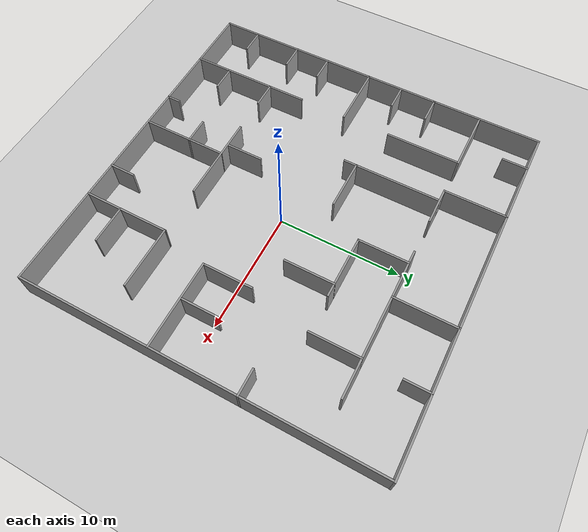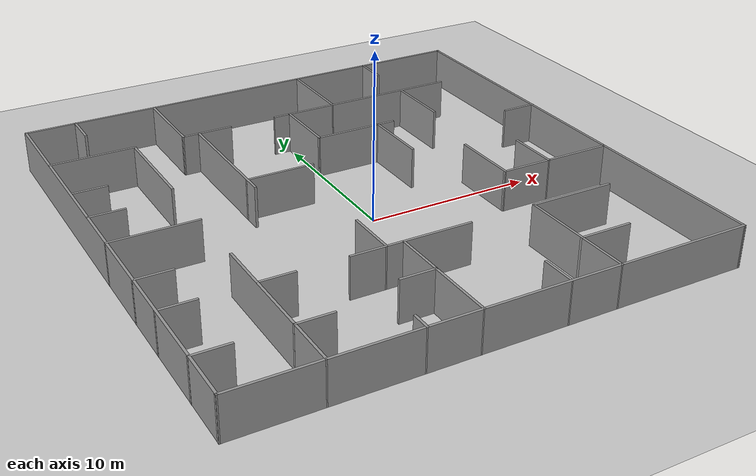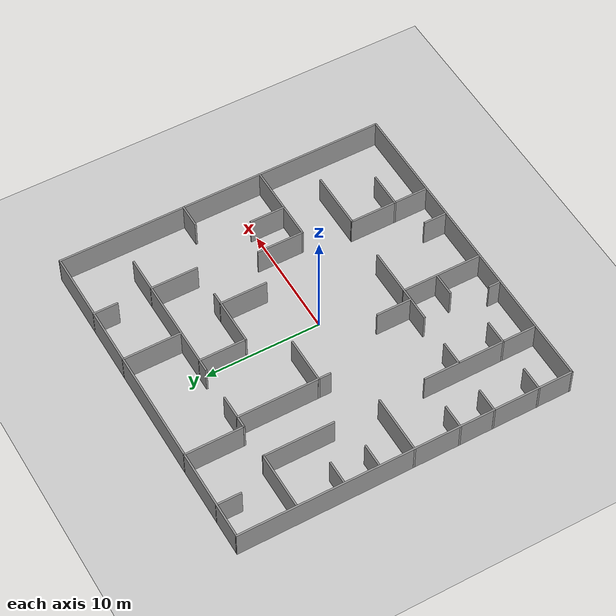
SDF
<sdf version="1.6">
 <world name="default">
  <light name="sun" type="directional">
   <pose>0 0 10 0 -0 0</pose>
   <diffuse>0.8 0.8 0.8 1</diffuse>
   <specular>0.1 0.1 0.1 1</specular>
   <attenuation>
    <range>1000</range>
    <constant>0.9</constant>
    <linear>0.01</linear>
    <quadratic>0.001</quadratic>
   </attenuation>
   <direction>-0.5 0.5 -1</direction>
  </light>
  <model name="ground_plane">
   <static>1</static>
   <link name="link">
    <collision name="collision">
     <geometry><plane><normal>0 0 1</normal><size>100 100</size></plane></geometry>
     <surface><friction><ode><mu>100</mu><mu2>50</mu2></ode></friction></surface>
    </collision>
    <visual name="visual">
     <cast_shadows>0</cast_shadows>
     <geometry><plane><normal>0 0 1</normal><size>100 100</size></plane></geometry>
     <material>
      <script><uri>file://media/materials/scripts/gazebo.material</uri><name>Gazebo/Grey</name></script>
     </material>
    </visual>
   </link>
  </model>
  <gravity>0 0 -9.8</gravity>
  <magnetic_field>6e-06 2.3e-05 -4.2e-05</magnetic_field>
  <atmosphere type="adiabatic"/>
  <physics name="default_physics" default="0" type="ode">
   <max_step_size>0.001</max_step_size>
   <real_time_factor>1</real_time_factor>
   <real_time_update_rate>1000</real_time_update_rate>
  </physics>
  <scene><ambient>0.4 0.4 0.4 1</ambient><background>0.7 0.7 0.7 1</background><shadows>1</shadows></scene>
  <spherical_coordinates>
   <surface_model>EARTH_WGS84</surface_model>
   <latitude_deg>0</latitude_deg>
   <longitude_deg>0</longitude_deg>
   <elevation>0</elevation>
   <heading_deg>0</heading_deg>
  </spherical_coordinates>
  <model name="test">
   <link name="Wall_0">
    <collision name="Wall_0_Collision">
     <geometry><box><size>29.15 0.15 2.5</size></box></geometry>
     <pose>0 0 1.25 0 -0 0</pose>
    </collision>
    <visual name="Wall_0_Visual">
     <pose>0 0 1.25 0 -0 0</pose>
     <geometry><box><size>29.15 0.15 2.5</size></box></geometry>
     <material>
      <script><uri>file://media/materials/scripts/gazebo.material</uri><name>Gazebo/Grey</name></script>
      <ambient>1 1 1 1</ambient>
     </material>
    </visual>
    <pose>-0.50 15.50 0 0 -0 0.00</pose>
   </link>
   <link name="Wall_1">
    <collision name="Wall_1_Collision">
     <geometry><box><size>5.15 0.15 2.5</size></box></geometry>
     <pose>0 0 1.25 0 -0 0</pose>
    </collision>
    <visual name="Wall_1_Visual">
     <pose>0 0 1.25 0 -0 0</pose>
     <geometry><box><size>5.15 0.15 2.5</size></box></geometry>
     <material>
      <script><uri>file://media/materials/scripts/gazebo.material</uri><name>Gazebo/Grey</name></script>
      <ambient>1 1 1 1</ambient>
     </material>
    </visual>
    <pose>-12.50 10.50 0 0 -0 0.00</pose>
   </link>
   <link name="Wall_2">
    <collision name="Wall_2_Collision">
     <geometry><box><size>3.15 0.15 2.5</size></box></geometry>
     <pose>0 0 1.25 0 -0 0</pose>
    </collision>
    <visual name="Wall_2_Visual">
     <pose>0 0 1.25 0 -0 0</pose>
     <geometry><box><size>3.15 0.15 2.5</size></box></geometry>
     <material>
      <script><uri>file://media/materials/scripts/gazebo.material</uri><name>Gazebo/Grey</name></script>
      <ambient>1 1 1 1</ambient>
     </material>
    </visual>
    <pose>-5.50 10.50 0 0 -0 0.00</pose>
   </link>
   <link name="Wall_3">
    <collision name="Wall_3_Collision">
     <geometry><box><size>12.15 0.15 2.5</size></box></geometry>
     <pose>0 0 1.25 0 -0 0</pose>
    </collision>
    <visual name="Wall_3_Visual">
     <pose>0 0 1.25 0 -0 0</pose>
     <geometry><box><size>12.15 0.15 2.5</size></box></geometry>
     <material>
      <script><uri>file://media/materials/scripts/gazebo.material</uri><name>Gazebo/Grey</name></script>
      <ambient>1 1 1 1</ambient>
     </material>
    </visual>
    <pose>5.00 10.50 0 0 -0 0.00</pose>
   </link>
   <link name="Wall_4">
    <collision name="Wall_4_Collision">
     <geometry><box><size>2.15 0.15 2.5</size></box></geometry>
     <pose>0 0 1.25 0 -0 0</pose>
    </collision>
    <visual name="Wall_4_Visual">
     <pose>0 0 1.25 0 -0 0</pose>
     <geometry><box><size>2.15 0.15 2.5</size></box></geometry>
     <material>
      <script><uri>file://media/materials/scripts/gazebo.material</uri><name>Gazebo/Grey</name></script>
      <ambient>1 1 1 1</ambient>
     </material>
    </visual>
    <pose>-14.00 6.50 0 0 -0 0.00</pose>
   </link>
   <link name="Wall_5">
    <collision name="Wall_5_Collision">
     <geometry><box><size>5.15 0.15 2.5</size></box></geometry>
     <pose>0 0 1.25 0 -0 0</pose>
    </collision>
    <visual name="Wall_5_Visual">
     <pose>0 0 1.25 0 -0 0</pose>
     <geometry><box><size>5.15 0.15 2.5</size></box></geometry>
     <material>
      <script><uri>file://media/materials/scripts/gazebo.material</uri><name>Gazebo/Grey</name></script>
      <ambient>1 1 1 1</ambient>
     </material>
    </visual>
    <pose>2.50 6.50 0 0 -0 0.00</pose>
   </link>
   <link name="Wall_6">
    <collision name="Wall_6_Collision">
     <geometry><box><size>2.15 0.15 2.5</size></box></geometry>
     <pose>0 0 1.25 0 -0 0</pose>
    </collision>
    <visual name="Wall_6_Visual">
     <pose>0 0 1.25 0 -0 0</pose>
     <geometry><box><size>2.15 0.15 2.5</size></box></geometry>
     <material>
      <script><uri>file://media/materials/scripts/gazebo.material</uri><name>Gazebo/Grey</name></script>
      <ambient>1 1 1 1</ambient>
     </material>
    </visual>
    <pose>13.00 4.50 0 0 -0 0.00</pose>
   </link>
   <link name="Wall_7">
    <collision name="Wall_7_Collision">
     <geometry><box><size>2.15 0.15 2.5</size></box></geometry>
     <pose>0 0 1.25 0 -0 0</pose>
    </collision>
    <visual name="Wall_7_Visual">
     <pose>0 0 1.25 0 -0 0</pose>
     <geometry><box><size>2.15 0.15 2.5</size></box></geometry>
     <material>
      <script><uri>file://media/materials/scripts/gazebo.material</uri><name>Gazebo/Grey</name></script>
      <ambient>1 1 1 1</ambient>
     </material>
    </visual>
    <pose>-14.00 3.50 0 0 -0 0.00</pose>
   </link>
   <link name="Wall_8">
    <collision name="Wall_8_Collision">
     <geometry><box><size>4.15 0.15 2.5</size></box></geometry>
     <pose>0 0 1.25 0 -0 0</pose>
    </collision>
    <visual name="Wall_8_Visual">
     <pose>0 0 1.25 0 -0 0</pose>
     <geometry><box><size>4.15 0.15 2.5</size></box></geometry>
     <material>
      <script><uri>file://media/materials/scripts/gazebo.material</uri><name>Gazebo/Grey</name></script>
      <ambient>1 1 1 1</ambient>
     </material>
    </visual>
    <pose>-4.00 3.50 0 0 -0 0.00</pose>
   </link>
   <link name="Wall_9">
    <collision name="Wall_9_Collision">
     <geometry><box><size>5.15 0.15 2.5</size></box></geometry>
     <pose>0 0 1.25 0 -0 0</pose>
    </collision>
    <visual name="Wall_9_Visual">
     <pose>0 0 1.25 0 -0 0</pose>
     <geometry><box><size>5.15 0.15 2.5</size></box></geometry>
     <material>
      <script><uri>file://media/materials/scripts/gazebo.material</uri><name>Gazebo/Grey</name></script>
      <ambient>1 1 1 1</ambient>
     </material>
    </visual>
    <pose>-12.50 0.50 0 0 -0 0.00</pose>
   </link>
   <link name="Wall_10">
    <collision name="Wall_10_Collision">
     <geometry><box><size>7.15 0.15 2.5</size></box></geometry>
     <pose>0 0 1.25 0 -0 0</pose>
    </collision>
    <visual name="Wall_10_Visual">
     <pose>0 0 1.25 0 -0 0</pose>
     <geometry><box><size>7.15 0.15 2.5</size></box></geometry>
     <material>
      <script><uri>file://media/materials/scripts/gazebo.material</uri><name>Gazebo/Grey</name></script>
      <ambient>1 1 1 1</ambient>
     </material>
    </visual>
    <pose>10.50 -2.50 0 0 -0 0.00</pose>
   </link>
   <link name="Wall_11">
    <collision name="Wall_11_Collision">
     <geometry><box><size>2.15 0.15 2.5</size></box></geometry>
     <pose>0 0 1.25 0 -0 0</pose>
    </collision>
    <visual name="Wall_11_Visual">
     <pose>0 0 1.25 0 -0 0</pose>
     <geometry><box><size>2.15 0.15 2.5</size></box></geometry>
     <material>
      <script><uri>file://media/materials/scripts/gazebo.material</uri><name>Gazebo/Grey</name></script>
      <ambient>1 1 1 1</ambient>
     </material>
    </visual>
    <pose>-14.00 -3.50 0 0 -0 0.00</pose>
   </link>
   <link name="Wall_12">
    <collision name="Wall_12_Collision">
     <geometry><box><size>2.15 0.15 2.5</size></box></geometry>
     <pose>0 0 1.25 0 -0 0</pose>
    </collision>
    <visual name="Wall_12_Visual">
     <pose>0 0 1.25 0 -0 0</pose>
     <geometry><box><size>2.15 0.15 2.5</size></box></geometry>
     <material>
      <script><uri>file://media/materials/scripts/gazebo.material</uri><name>Gazebo/Grey</name></script>
      <ambient>1 1 1 1</ambient>
     </material>
    </visual>
    <pose>-14.00 -6.50 0 0 -0 0.00</pose>
   </link>
   <link name="Wall_13">
    <collision name="Wall_13_Collision">
     <geometry><box><size>2.15 0.15 2.5</size></box></geometry>
     <pose>0 0 1.25 0 -0 0</pose>
    </collision>
    <visual name="Wall_13_Visual">
     <pose>0 0 1.25 0 -0 0</pose>
     <geometry><box><size>2.15 0.15 2.5</size></box></geometry>
     <material>
      <script><uri>file://media/materials/scripts/gazebo.material</uri><name>Gazebo/Grey</name></script>
      <ambient>1 1 1 1</ambient>
     </material>
    </visual>
    <pose>-9.00 -6.50 0 0 -0 0.00</pose>
   </link>
   <link name="Wall_14">
    <collision name="Wall_14_Collision">
     <geometry><box><size>7.15 0.15 2.5</size></box></geometry>
     <pose>0 0 1.25 0 -0 0</pose>
    </collision>
    <visual name="Wall_14_Visual">
     <pose>0 0 1.25 0 -0 0</pose>
     <geometry><box><size>7.15 0.15 2.5</size></box></geometry>
     <material>
      <script><uri>file://media/materials/scripts/gazebo.material</uri><name>Gazebo/Grey</name></script>
      <ambient>1 1 1 1</ambient>
     </material>
    </visual>
    <pose>-1.50 -6.50 0 0 -0 0.00</pose>
   </link>
   <link name="Wall_15">
    <collision name="Wall_15_Collision">
     <geometry><box><size>5.15 0.15 2.5</size></box></geometry>
     <pose>0 0 1.25 0 -0 0</pose>
    </collision>
    <visual name="Wall_15_Visual">
     <pose>0 0 1.25 0 -0 0</pose>
     <geometry><box><size>5.15 0.15 2.5</size></box></geometry>
     <material>
      <script><uri>file://media/materials/scripts/gazebo.material</uri><name>Gazebo/Grey</name></script>
      <ambient>1 1 1 1</ambient>
     </material>
    </visual>
    <pose>8.50 -6.50 0 0 -0 0.00</pose>
   </link>
   <link name="Wall_16">
    <collision name="Wall_16_Collision">
     <geometry><box><size>2.15 0.15 2.5</size></box></geometry>
     <pose>0 0 1.25 0 -0 0</pose>
    </collision>
    <visual name="Wall_16_Visual">
     <pose>0 0 1.25 0 -0 0</pose>
     <geometry><box><size>2.15 0.15 2.5</size></box></geometry>
     <material>
      <script><uri>file://media/materials/scripts/gazebo.material</uri><name>Gazebo/Grey</name></script>
      <ambient>1 1 1 1</ambient>
     </material>
    </visual>
    <pose>-3.00 -9.50 0 0 -0 0.00</pose>
   </link>
   <link name="Wall_17">
    <collision name="Wall_17_Collision">
     <geometry><box><size>2.15 0.15 2.5</size></box></geometry>
     <pose>0 0 1.25 0 -0 0</pose>
    </collision>
    <visual name="Wall_17_Visual">
     <pose>0 0 1.25 0 -0 0</pose>
     <geometry><box><size>2.15 0.15 2.5</size></box></geometry>
     <material>
      <script><uri>file://media/materials/scripts/gazebo.material</uri><name>Gazebo/Grey</name></script>
      <ambient>1 1 1 1</ambient>
     </material>
    </visual>
    <pose>-14.00 -10.50 0 0 -0 0.00</pose>
   </link>
   <link name="Wall_18">
    <collision name="Wall_18_Collision">
     <geometry><box><size>2.15 0.15 2.5</size></box></geometry>
     <pose>0 0 1.25 0 -0 0</pose>
    </collision>
    <visual name="Wall_18_Visual">
     <pose>0 0 1.25 0 -0 0</pose>
     <geometry><box><size>2.15 0.15 2.5</size></box></geometry>
     <material>
      <script><uri>file://media/materials/scripts/gazebo.material</uri><name>Gazebo/Grey</name></script>
      <ambient>1 1 1 1</ambient>
     </material>
    </visual>
    <pose>-9.00 -10.50 0 0 -0 0.00</pose>
   </link>
   <link name="Wall_19">
    <collision name="Wall_19_Collision">
     <geometry><box><size>3.15 0.15 2.5</size></box></geometry>
     <pose>0 0 1.25 0 -0 0</pose>
    </collision>
    <visual name="Wall_19_Visual">
     <pose>0 0 1.25 0 -0 0</pose>
     <geometry><box><size>3.15 0.15 2.5</size></box></geometry>
     <material>
      <script><uri>file://media/materials/scripts/gazebo.material</uri><name>Gazebo/Grey</name></script>
      <ambient>1 1 1 1</ambient>
     </material>
    </visual>
    <pose>7.50 -10.50 0 0 -0 0.00</pose>
   </link>
   <link name="Wall_20">
    <collision name="Wall_20_Collision">
     <geometry><box><size>29.15 0.15 2.5</size></box></geometry>
     <pose>0 0 1.25 0 -0 0</pose>
    </collision>
    <visual name="Wall_20_Visual">
     <pose>0 0 1.25 0 -0 0</pose>
     <geometry><box><size>29.15 0.15 2.5</size></box></geometry>
     <material>
      <script><uri>file://media/materials/scripts/gazebo.material</uri><name>Gazebo/Grey</name></script>
      <ambient>1 1 1 1</ambient>
     </material>
    </visual>
    <pose>-0.50 -13.50 0 0 -0 0.00</pose>
   </link>
   <link name="Wall_21">
    <collision name="Wall_21_Collision">
     <geometry><box><size>29.15 0.15 2.5</size></box></geometry>
     <pose>0 0 1.25 0 -0 0</pose>
    </collision>
    <visual name="Wall_21_Visual">
     <pose>0 0 1.25 0 -0 0</pose>
     <geometry><box><size>29.15 0.15 2.5</size></box></geometry>
     <material>
      <script><uri>file://media/materials/scripts/gazebo.material</uri><name>Gazebo/Grey</name></script>
      <ambient>1 1 1 1</ambient>
     </material>
    </visual>
    <pose>-15.00 1.00 0 0 -0 -1.57</pose>
   </link>
   <link name="Wall_22">
    <collision name="Wall_22_Collision">
     <geometry><box><size>2.15 0.15 2.5</size></box></geometry>
     <pose>0 0 1.25 0 -0 0</pose>
    </collision>
    <visual name="Wall_22_Visual">
     <pose>0 0 1.25 0 -0 0</pose>
     <geometry><box><size>2.15 0.15 2.5</size></box></geometry>
     <material>
      <script><uri>file://media/materials/scripts/gazebo.material</uri><name>Gazebo/Grey</name></script>
      <ambient>1 1 1 1</ambient>
     </material>
    </visual>
    <pose>-12.00 14.50 0 0 -0 -1.57</pose>
   </link>
   <link name="Wall_23">
    <collision name="Wall_23_Collision">
     <geometry><box><size>6.15 0.15 2.5</size></box></geometry>
     <pose>0 0 1.25 0 -0 0</pose>
    </collision>
    <visual name="Wall_23_Visual">
     <pose>0 0 1.25 0 -0 0</pose>
     <geometry><box><size>6.15 0.15 2.5</size></box></geometry>
     <material>
      <script><uri>file://media/materials/scripts/gazebo.material</uri><name>Gazebo/Grey</name></script>
      <ambient>1 1 1 1</ambient>
     </material>
    </visual>
    <pose>-10.00 7.50 0 0 -0 -1.57</pose>
   </link>
   <link name="Wall_24">
    <collision name="Wall_24_Collision">
     <geometry><box><size>10.15 0.15 2.5</size></box></geometry>
     <pose>0 0 1.25 0 -0 0</pose>
    </collision>
    <visual name="Wall_24_Visual">
     <pose>0 0 1.25 0 -0 0</pose>
     <geometry><box><size>10.15 0.15 2.5</size></box></geometry>
     <material>
      <script><uri>file://media/materials/scripts/gazebo.material</uri><name>Gazebo/Grey</name></script>
      <ambient>1 1 1 1</ambient>
     </material>
    </visual>
    <pose>-10.00 -8.50 0 0 -0 -1.57</pose>
   </link>
   <link name="Wall_25">
    <collision name="Wall_25_Collision">
     <geometry><box><size>5.15 0.15 2.5</size></box></geometry>
     <pose>0 0 1.25 0 -0 0</pose>
    </collision>
    <visual name="Wall_25_Visual">
     <pose>0 0 1.25 0 -0 0</pose>
     <geometry><box><size>5.15 0.15 2.5</size></box></geometry>
     <material>
      <script><uri>file://media/materials/scripts/gazebo.material</uri><name>Gazebo/Grey</name></script>
      <ambient>1 1 1 1</ambient>
     </material>
    </visual>
    <pose>-7.00 13.00 0 0 -0 -1.57</pose>
   </link>
   <link name="Wall_26">
    <collision name="Wall_26_Collision">
     <geometry><box><size>8.15 0.15 2.5</size></box></geometry>
     <pose>0 0 1.25 0 -0 0</pose>
    </collision>
    <visual name="Wall_26_Visual">
     <pose>0 0 1.25 0 -0 0</pose>
     <geometry><box><size>8.15 0.15 2.5</size></box></geometry>
     <material>
      <script><uri>file://media/materials/scripts/gazebo.material</uri><name>Gazebo/Grey</name></script>
      <ambient>1 1 1 1</ambient>
     </material>
    </visual>
    <pose>-6.00 6.50 0 0 -0 -1.57</pose>
   </link>
   <link name="Wall_27">
    <collision name="Wall_27_Collision">
     <geometry><box><size>1.15 0.15 2.5</size></box></geometry>
     <pose>0 0 1.25 0 -0 0</pose>
    </collision>
    <visual name="Wall_27_Visual">
     <pose>0 0 1.25 0 -0 0</pose>
     <geometry><box><size>1.15 0.15 2.5</size></box></geometry>
     <material>
      <script><uri>file://media/materials/scripts/gazebo.material</uri><name>Gazebo/Grey</name></script>
      <ambient>1 1 1 1</ambient>
     </material>
    </visual>
    <pose>-5.00 -13.00 0 0 -0 -1.57</pose>
   </link>
   <link name="Wall_28">
    <collision name="Wall_28_Collision">
     <geometry><box><size>3.15 0.15 2.5</size></box></geometry>
     <pose>0 0 1.25 0 -0 0</pose>
    </collision>
    <visual name="Wall_28_Visual">
     <pose>0 0 1.25 0 -0 0</pose>
     <geometry><box><size>3.15 0.15 2.5</size></box></geometry>
     <material>
      <script><uri>file://media/materials/scripts/gazebo.material</uri><name>Gazebo/Grey</name></script>
      <ambient>1 1 1 1</ambient>
     </material>
    </visual>
    <pose>-3.00 -5.00 0 0 -0 -1.57</pose>
   </link>
   <link name="Wall_29">
    <collision name="Wall_29_Collision">
     <geometry><box><size>7.15 0.15 2.5</size></box></geometry>
     <pose>0 0 1.25 0 -0 0</pose>
    </collision>
    <visual name="Wall_29_Visual">
     <pose>0 0 1.25 0 -0 0</pose>
     <geometry><box><size>7.15 0.15 2.5</size></box></geometry>
     <material>
      <script><uri>file://media/materials/scripts/gazebo.material</uri><name>Gazebo/Grey</name></script>
      <ambient>1 1 1 1</ambient>
     </material>
    </visual>
    <pose>-2.00 -10.00 0 0 -0 -1.57</pose>
   </link>
   <link name="Wall_30">
    <collision name="Wall_30_Collision">
     <geometry><box><size>4.15 0.15 2.5</size></box></geometry>
     <pose>0 0 1.25 0 -0 0</pose>
    </collision>
    <visual name="Wall_30_Visual">
     <pose>0 0 1.25 0 -0 0</pose>
     <geometry><box><size>4.15 0.15 2.5</size></box></geometry>
     <material>
      <script><uri>file://media/materials/scripts/gazebo.material</uri><name>Gazebo/Grey</name></script>
      <ambient>1 1 1 1</ambient>
     </material>
    </visual>
    <pose>0.00 8.50 0 0 -0 -1.57</pose>
   </link>
   <link name="Wall_31">
    <collision name="Wall_31_Collision">
     <geometry><box><size>5.15 0.15 2.5</size></box></geometry>
     <pose>0 0 1.25 0 -0 0</pose>
    </collision>
    <visual name="Wall_31_Visual">
     <pose>0 0 1.25 0 -0 0</pose>
     <geometry><box><size>5.15 0.15 2.5</size></box></geometry>
     <material>
      <script><uri>file://media/materials/scripts/gazebo.material</uri><name>Gazebo/Grey</name></script>
      <ambient>1 1 1 1</ambient>
     </material>
    </visual>
    <pose>3.00 13.00 0 0 -0 -1.57</pose>
   </link>
   <link name="Wall_32">
    <collision name="Wall_32_Collision">
     <geometry><box><size>2.15 0.15 2.5</size></box></geometry>
     <pose>0 0 1.25 0 -0 0</pose>
    </collision>
    <visual name="Wall_32_Visual">
     <pose>0 0 1.25 0 -0 0</pose>
     <geometry><box><size>2.15 0.15 2.5</size></box></geometry>
     <material>
      <script><uri>file://media/materials/scripts/gazebo.material</uri><name>Gazebo/Grey</name></script>
      <ambient>1 1 1 1</ambient>
     </material>
    </visual>
    <pose>3.00 -12.50 0 0 -0 -1.57</pose>
   </link>
   <link name="Wall_33">
    <collision name="Wall_33_Collision">
     <geometry><box><size>4.15 0.15 2.5</size></box></geometry>
     <pose>0 0 1.25 0 -0 0</pose>
    </collision>
    <visual name="Wall_33_Visual">
     <pose>0 0 1.25 0 -0 0</pose>
     <geometry><box><size>4.15 0.15 2.5</size></box></geometry>
     <material>
      <script><uri>file://media/materials/scripts/gazebo.material</uri><name>Gazebo/Grey</name></script>
      <ambient>1 1 1 1</ambient>
     </material>
    </visual>
    <pose>4.00 4.50 0 0 -0 -1.57</pose>
   </link>
   <link name="Wall_34">
    <collision name="Wall_34_Collision">
     <geometry><box><size>7.15 0.15 2.5</size></box></geometry>
     <pose>0 0 1.25 0 -0 0</pose>
    </collision>
    <visual name="Wall_34_Visual">
     <pose>0 0 1.25 0 -0 0</pose>
     <geometry><box><size>7.15 0.15 2.5</size></box></geometry>
     <material>
      <script><uri>file://media/materials/scripts/gazebo.material</uri><name>Gazebo/Grey</name></script>
      <ambient>1 1 1 1</ambient>
     </material>
    </visual>
    <pose>6.00 -10.00 0 0 -0 -1.57</pose>
   </link>
   <link name="Wall_35">
    <collision name="Wall_35_Collision">
     <geometry><box><size>4.15 0.15 2.5</size></box></geometry>
     <pose>0 0 1.25 0 -0 0</pose>
    </collision>
    <visual name="Wall_35_Visual">
     <pose>0 0 1.25 0 -0 0</pose>
     <geometry><box><size>4.15 0.15 2.5</size></box></geometry>
     <material>
      <script><uri>file://media/materials/scripts/gazebo.material</uri><name>Gazebo/Grey</name></script>
      <ambient>1 1 1 1</ambient>
     </material>
    </visual>
    <pose>7.00 -0.50 0 0 -0 -1.57</pose>
   </link>
   <link name="Wall_36">
    <collision name="Wall_36_Collision">
     <geometry><box><size>2.15 0.15 2.5</size></box></geometry>
     <pose>0 0 1.25 0 -0 0</pose>
    </collision>
    <visual name="Wall_36_Visual">
     <pose>0 0 1.25 0 -0 0</pose>
     <geometry><box><size>2.15 0.15 2.5</size></box></geometry>
     <material>
      <script><uri>file://media/materials/scripts/gazebo.material</uri><name>Gazebo/Grey</name></script>
      <ambient>1 1 1 1</ambient>
     </material>
    </visual>
    <pose>8.00 14.50 0 0 -0 -1.57</pose>
   </link>
   <link name="Wall_37">
    <collision name="Wall_37_Collision">
     <geometry><box><size>4.15 0.15 2.5</size></box></geometry>
     <pose>0 0 1.25 0 -0 0</pose>
    </collision>
    <visual name="Wall_37_Visual">
     <pose>0 0 1.25 0 -0 0</pose>
     <geometry><box><size>4.15 0.15 2.5</size></box></geometry>
     <material>
      <script><uri>file://media/materials/scripts/gazebo.material</uri><name>Gazebo/Grey</name></script>
      <ambient>1 1 1 1</ambient>
     </material>
    </visual>
    <pose>8.00 8.50 0 0 -0 -1.57</pose>
   </link>
   <link name="Wall_38">
    <collision name="Wall_38_Collision">
     <geometry><box><size>3.15 0.15 2.5</size></box></geometry>
     <pose>0 0 1.25 0 -0 0</pose>
    </collision>
    <visual name="Wall_38_Visual">
     <pose>0 0 1.25 0 -0 0</pose>
     <geometry><box><size>3.15 0.15 2.5</size></box></geometry>
     <material>
      <script><uri>file://media/materials/scripts/gazebo.material</uri><name>Gazebo/Grey</name></script>
      <ambient>1 1 1 1</ambient>
     </material>
    </visual>
    <pose>10.00 -1.00 0 0 -0 -1.57</pose>
   </link>
   <link name="Wall_39">
    <collision name="Wall_39_Collision">
     <geometry><box><size>29.15 0.15 2.5</size></box></geometry>
     <pose>0 0 1.25 0 -0 0</pose>
    </collision>
    <visual name="Wall_39_Visual">
     <pose>0 0 1.25 0 -0 0</pose>
     <geometry><box><size>29.15 0.15 2.5</size></box></geometry>
     <material>
      <script><uri>file://media/materials/scripts/gazebo.material</uri><name>Gazebo/Grey</name></script>
      <ambient>1 1 1 1</ambient>
     </material>
    </visual>
    <pose>14.00 1.00 0 0 -0 -1.57</pose>
   </link>
   <static>1</static>
  </model>
 </world>
</sdf>
